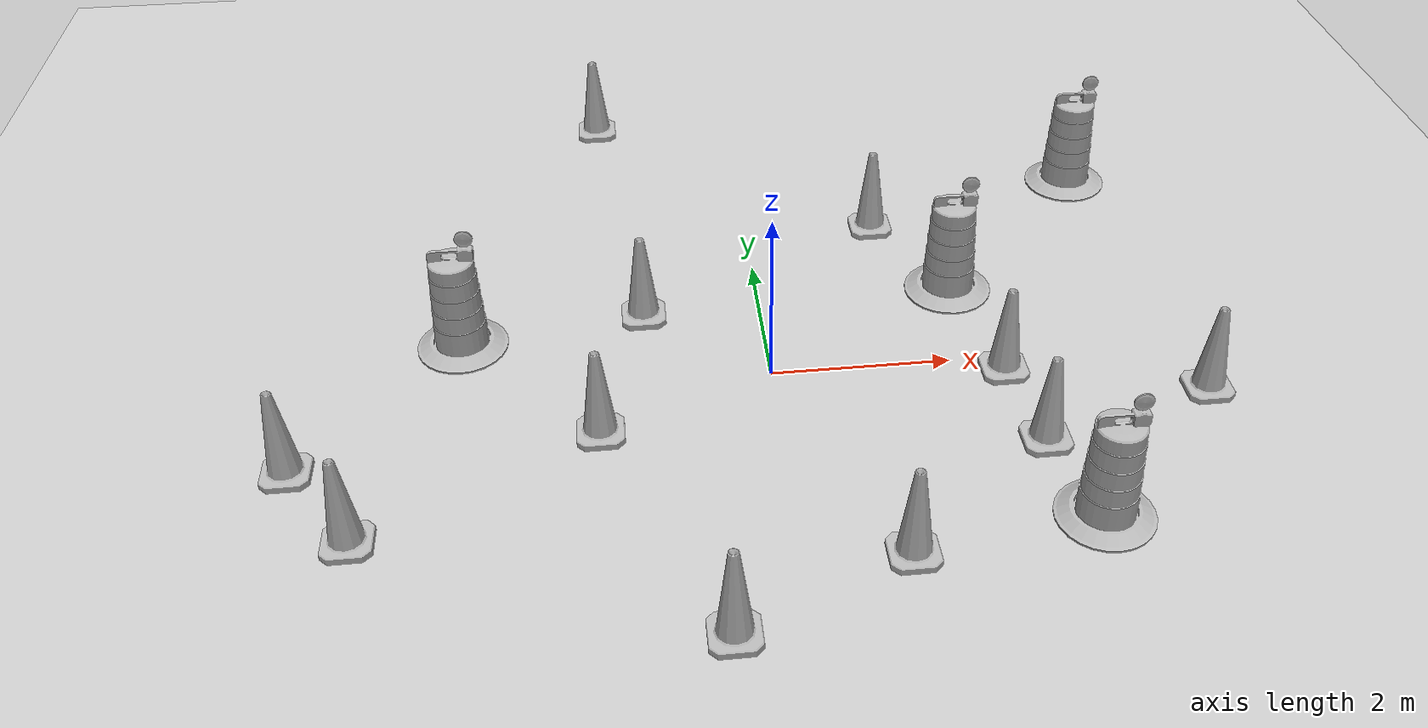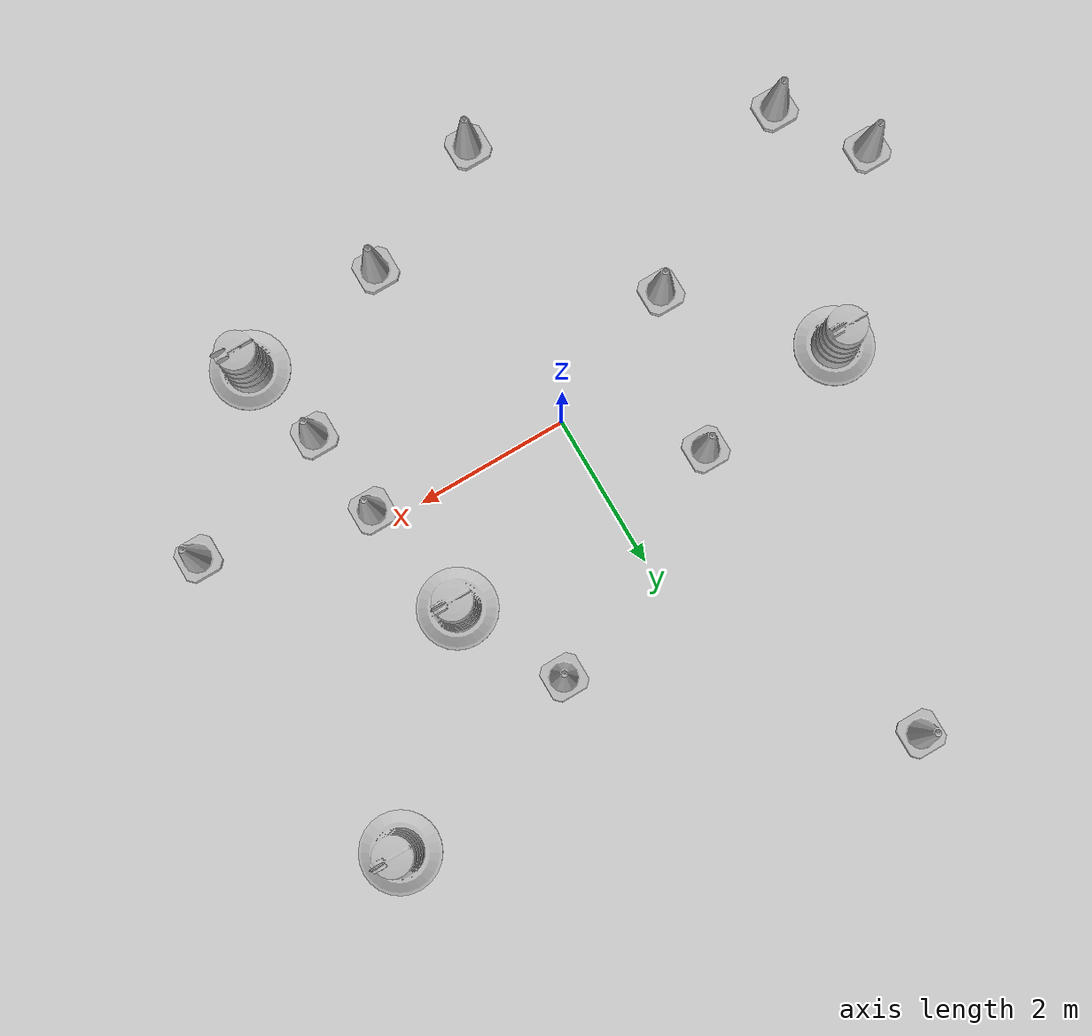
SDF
<sdf version="1.7">
 <world name="default">
  <light name="sun" type="directional">
   <pose>0 0 10 0 -0 0</pose>
   <diffuse>0.8 0.8 0.8 1</diffuse>
   <specular>0.2 0.2 0.2 1</specular>
   <attenuation>
    <range>1000</range>
    <constant>0.9</constant>
    <linear>0.01</linear>
    <quadratic>0.001</quadratic>
   </attenuation>
   <direction>-0.5 0.1 -0.9</direction>
   <spot><inner_angle>0</inner_angle><outer_angle>0</outer_angle><falloff>0</falloff></spot>
  </light>
  <model name="ground_plane">
   <static>1</static>
   <link name="link">
    <collision name="collision">
     <geometry><plane><normal>0 0 1</normal><size>100 100</size></plane></geometry>
     <surface>
      <contact><collide_bitmask>65535</collide_bitmask></contact>
      <friction><ode><mu>100</mu><mu2>50</mu2></ode></friction>
     </surface>
    </collision>
    <visual name="visual">
     <cast_shadows>0</cast_shadows>
     <geometry><plane><normal>0 0 1</normal><size>100 100</size></plane></geometry>
     <material>
      <script><uri>file://media/materials/scripts/gazebo.material</uri><name>Gazebo/Grey</name></script>
     </material>
    </visual>
   </link>
  </model>
  <gravity>0 0 -9.8</gravity>
  <magnetic_field>6e-06 2.3e-05 -4.2e-05</magnetic_field>
  <atmosphere type="adiabatic"/>
  <physics type="ode">
   <max_step_size>0.001</max_step_size>
   <real_time_factor>1</real_time_factor>
   <real_time_update_rate>1000</real_time_update_rate>
  </physics>
  <scene><ambient>0.4 0.4 0.4 1</ambient><background>0.7 0.7 0.7 1</background><shadows>1</shadows></scene>
  <spherical_coordinates>
   <surface_model>EARTH_WGS84</surface_model>
   <latitude_deg>0</latitude_deg>
   <longitude_deg>0</longitude_deg>
   <elevation>0</elevation>
   <heading_deg>0</heading_deg>
  </spherical_coordinates>
  <model name="Construction Barrel">
   <link name="link">
    <inertial>
     <pose>0 0 0.4 0 -0 0</pose>
     <mass>500</mass>
     <inertia><ixx>51.2096</ixx><iyy>51.2096</iyy><izz>25</izz><ixy>0</ixy><ixz>0</ixz><iyz>0</iyz></inertia>
    </inertial>
    <collision name="collision">
     <geometry><mesh><uri>model://construction_barrel/meshes/construction_barrel.dae</uri></mesh></geometry>
    </collision>
    <visual name="visual">
     <geometry><mesh><uri>model://construction_barrel/meshes/construction_barrel.dae</uri></mesh></geometry>
    </visual>
   </link>
   <pose>2.2663 1.33791 -0 0 -0 -2.5e-05</pose>
  </model>
  <model name="Construction Barrel_0">
   <link name="link">
    <inertial>
     <pose>0 0 0.4 0 -0 0</pose>
     <mass>500</mass>
     <inertia><ixx>51.2096</ixx><iyy>51.2096</iyy><izz>25</izz><ixy>0</ixy><ixz>0</ixz><iyz>0</iyz></inertia>
    </inertial>
    <collision name="collision">
     <geometry><mesh><uri>model://construction_barrel/meshes/construction_barrel.dae</uri></mesh></geometry>
    </collision>
    <visual name="visual">
     <geometry><mesh><uri>model://construction_barrel/meshes/construction_barrel.dae</uri></mesh></geometry>
    </visual>
   </link>
   <pose>3.00515 -2.53388 -0 0 -0 -2.4e-05</pose>
  </model>
  <model name="Construction Barrel_1">
   <link name="link">
    <inertial>
     <pose>0 0 0.4 0 -0 0</pose>
     <mass>500</mass>
     <inertia><ixx>51.2096</ixx><iyy>51.2096</iyy><izz>25</izz><ixy>0</ixy><ixz>0</ixz><iyz>0</iyz></inertia>
    </inertial>
    <collision name="collision">
     <geometry><mesh><uri>model://construction_barrel/meshes/construction_barrel.dae</uri></mesh></geometry>
    </collision>
    <visual name="visual">
     <geometry><mesh><uri>model://construction_barrel/meshes/construction_barrel.dae</uri></mesh></geometry>
    </visual>
   </link>
   <pose>-3.41368 0.884492 -0 0 -0 -2.2e-05</pose>
  </model>
  <model name="Construction Barrel_2">
   <link name="link">
    <inertial>
     <pose>0 0 0.4 0 -0 0</pose>
     <mass>500</mass>
     <inertia><ixx>51.2096</ixx><iyy>51.2096</iyy><izz>25</izz><ixy>0</ixy><ixz>0</ixz><iyz>0</iyz></inertia>
    </inertial>
    <collision name="collision">
     <geometry><mesh><uri>model://construction_barrel/meshes/construction_barrel.dae</uri></mesh></geometry>
    </collision>
    <visual name="visual">
     <geometry><mesh><uri>model://construction_barrel/meshes/construction_barrel.dae</uri></mesh></geometry>
    </visual>
   </link>
   <pose>4.32093 3.52523 -0 0 -0 -2.1e-05</pose>
  </model>
  <model name="Construction Cone">
   <link name="link">
    <collision name="collision">
     <geometry>
      <mesh><scale>10 10 10</scale><uri>model://construction_cone/meshes/construction_cone.dae</uri></mesh>
     </geometry>
    </collision>
    <visual name="visual">
     <geometry>
      <mesh><scale>10 10 10</scale><uri>model://construction_cone/meshes/construction_cone.dae</uri></mesh>
     </geometry>
    </visual>
    <inertial>
     <inertia><ixx>1</ixx><ixy>0</ixy><ixz>0</ixz><iyy>1</iyy><iyz>0</iyz><izz>1</izz></inertia>
     <mass>1</mass>
    </inertial>
   </link>
   <pose>-1.35595 1.19453 -0 0 -1e-06 0</pose>
  </model>
  <model name="Construction Cone_0">
   <link name="link">
    <collision name="collision">
     <geometry>
      <mesh><scale>10 10 10</scale><uri>model://construction_cone/meshes/construction_cone.dae</uri></mesh>
     </geometry>
    </collision>
    <visual name="visual">
     <geometry>
      <mesh><scale>10 10 10</scale><uri>model://construction_cone/meshes/construction_cone.dae</uri></mesh>
     </geometry>
    </visual>
    <inertial>
     <inertia><ixx>1</ixx><ixy>0</ixy><ixz>0</ixz><iyy>1</iyy><iyz>0</iyz><izz>1</izz></inertia>
     <mass>1</mass>
    </inertial>
   </link>
   <pose>-0.764251 -3.63374 -0 0 -0 0</pose>
  </model>
  <model name="Construction Cone_1">
   <link name="link">
    <collision name="collision">
     <geometry>
      <mesh><scale>10 10 10</scale><uri>model://construction_cone/meshes/construction_cone.dae</uri></mesh>
     </geometry>
    </collision>
    <visual name="visual">
     <geometry>
      <mesh><scale>10 10 10</scale><uri>model://construction_cone/meshes/construction_cone.dae</uri></mesh>
     </geometry>
    </visual>
    <inertial>
     <inertia><ixx>1</ixx><ixy>0</ixy><ixz>0</ixz><iyy>1</iyy><iyz>0</iyz><izz>1</izz></inertia>
     <mass>1</mass>
    </inertial>
   </link>
   <pose>2.7206 -1.40375 -0 0 -1e-06 0</pose>
  </model>
  <model name="Construction Cone_2">
   <link name="link">
    <collision name="collision">
     <geometry>
      <mesh><scale>10 10 10</scale><uri>model://construction_cone/meshes/construction_cone.dae</uri></mesh>
     </geometry>
    </collision>
    <visual name="visual">
     <geometry>
      <mesh><scale>10 10 10</scale><uri>model://construction_cone/meshes/construction_cone.dae</uri></mesh>
     </geometry>
    </visual>
    <inertial>
     <inertia><ixx>1</ixx><ixy>0</ixy><ixz>0</ixz><iyy>1</iyy><iyz>0</iyz><izz>1</izz></inertia>
     <mass>1</mass>
    </inertial>
   </link>
   <pose>-4.35775 -2.09631 -0 0 -1e-06 0</pose>
  </model>
  <model name="Construction Cone_3">
   <link name="link">
    <collision name="collision">
     <geometry>
      <mesh><scale>10 10 10</scale><uri>model://construction_cone/meshes/construction_cone.dae</uri></mesh>
     </geometry>
    </collision>
    <visual name="visual">
     <geometry>
      <mesh><scale>10 10 10</scale><uri>model://construction_cone/meshes/construction_cone.dae</uri></mesh>
     </geometry>
    </visual>
    <inertial>
     <inertia><ixx>1</ixx><ixy>0</ixy><ixz>0</ixz><iyy>1</iyy><iyz>0</iyz><izz>1</izz></inertia>
     <mass>1</mass>
    </inertial>
   </link>
   <pose>-5.0862 -1.04716 -0 0 -1e-06 0</pose>
  </model>
  <model name="Construction Cone_4">
   <link name="link">
    <collision name="collision">
     <geometry>
      <mesh><scale>10 10 10</scale><uri>model://construction_cone/meshes/construction_cone.dae</uri></mesh>
     </geometry>
    </collision>
    <visual name="visual">
     <geometry>
      <mesh><scale>10 10 10</scale><uri>model://construction_cone/meshes/construction_cone.dae</uri></mesh>
     </geometry>
    </visual>
    <inertial>
     <inertia><ixx>1</ixx><ixy>0</ixy><ixz>0</ixz><iyy>1</iyy><iyz>0</iyz><izz>1</izz></inertia>
     <mass>1</mass>
    </inertial>
   </link>
   <pose>1.56886 2.7195 -1e-05 0 -0 0</pose>
  </model>
  <model name="Construction Cone_5">
   <link name="link">
    <collision name="collision">
     <geometry>
      <mesh><scale>10 10 10</scale><uri>model://construction_cone/meshes/construction_cone.dae</uri></mesh>
     </geometry>
    </collision>
    <visual name="visual">
     <geometry>
      <mesh><scale>10 10 10</scale><uri>model://construction_cone/meshes/construction_cone.dae</uri></mesh>
     </geometry>
    </visual>
    <inertial>
     <inertia><ixx>1</ixx><ixy>0</ixy><ixz>0</ixz><iyy>1</iyy><iyz>0</iyz><izz>1</izz></inertia>
     <mass>1</mass>
    </inertial>
   </link>
   <pose>2.56437 -0.226634 -0 0 -0 0</pose>
  </model>
  <model name="Construction Cone_6">
   <link name="link">
    <collision name="collision">
     <geometry>
      <mesh><scale>10 10 10</scale><uri>model://construction_cone/meshes/construction_cone.dae</uri></mesh>
     </geometry>
    </collision>
    <visual name="visual">
     <geometry>
      <mesh><scale>10 10 10</scale><uri>model://construction_cone/meshes/construction_cone.dae</uri></mesh>
     </geometry>
    </visual>
    <inertial>
     <inertia><ixx>1</ixx><ixy>0</ixy><ixz>0</ixz><iyy>1</iyy><iyz>0</iyz><izz>1</izz></inertia>
     <mass>1</mass>
    </inertial>
   </link>
   <pose>4.69371 -0.793768 -0 0 -1e-06 0</pose>
  </model>
  <model name="Construction Cone_7">
   <link name="link">
    <collision name="collision">
     <geometry>
      <mesh><scale>10 10 10</scale><uri>model://construction_cone/meshes/construction_cone.dae</uri></mesh>
     </geometry>
    </collision>
    <visual name="visual">
     <geometry>
      <mesh><scale>10 10 10</scale><uri>model://construction_cone/meshes/construction_cone.dae</uri></mesh>
     </geometry>
    </visual>
    <inertial>
     <inertia><ixx>1</ixx><ixy>0</ixy><ixz>0</ixz><iyy>1</iyy><iyz>0</iyz><izz>1</izz></inertia>
     <mass>1</mass>
    </inertial>
   </link>
   <pose>1.03082 -2.83745 -0 0 -1e-06 0</pose>
  </model>
  <model name="Construction Cone_8">
   <link name="link">
    <collision name="collision">
     <geometry>
      <mesh><scale>10 10 10</scale><uri>model://construction_cone/meshes/construction_cone.dae</uri></mesh>
     </geometry>
    </collision>
    <visual name="visual">
     <geometry>
      <mesh><scale>10 10 10</scale><uri>model://construction_cone/meshes/construction_cone.dae</uri></mesh>
     </geometry>
    </visual>
    <inertial>
     <inertia><ixx>1</ixx><ixy>0</ixy><ixz>0</ixz><iyy>1</iyy><iyz>0</iyz><izz>1</izz></inertia>
     <mass>1</mass>
    </inertial>
   </link>
   <pose>-1.80316 5.49107 -0 0 -0 0</pose>
  </model>
  <model name="Construction Cone_9">
   <link name="link">
    <collision name="collision">
     <geometry>
      <mesh><scale>10 10 10</scale><uri>model://construction_cone/meshes/construction_cone.dae</uri></mesh>
     </geometry>
    </collision>
    <visual name="visual">
     <geometry>
      <mesh><scale>10 10 10</scale><uri>model://construction_cone/meshes/construction_cone.dae</uri></mesh>
     </geometry>
    </visual>
    <inertial>
     <inertia><ixx>1</ixx><ixy>0</ixy><ixz>0</ixz><iyy>1</iyy><iyz>0</iyz><izz>1</izz></inertia>
     <mass>1</mass>
    </inertial>
   </link>
   <pose>-1.89906 -0.787125 -0 0 -1e-06 0</pose>
  </model>
 </world>
</sdf>
